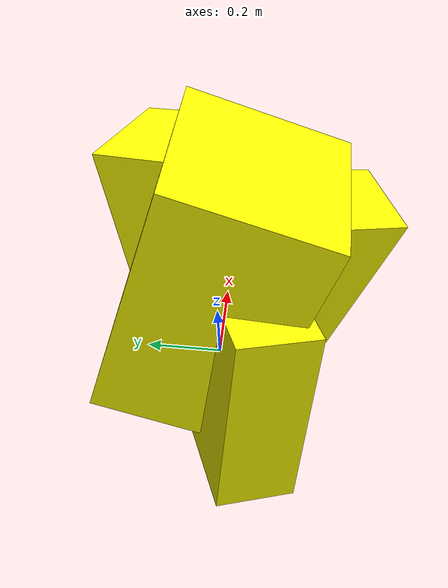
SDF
<?xml version="1.0"?>
<sdf version="1.6">
  <model name="polygon_crystal">
    <static>true</static>  <!-- 광물이므로 고정 객체 설정 -->
    <link name="crystal_link">

      <!-- 중앙 메인 수정 -->
      <visual name="main_crystal">
        <geometry>
          <box>
            <size>0.4 0.4 0.7</size>
          </box>
        </geometry>
        <pose>0 0 0.35 0.3 0.2 0</pose>  <!-- 약간 회전 추가 -->
        <material>
          <ambient>1 1 0 1</ambient>  <!-- 노란색 -->
          <diffuse>1 1 0 1</diffuse>
          <specular>0.2 0.2 0.2 1</specular>  <!-- 광택 감소 -->
          <emissive>0.1 0.1 0 1</emissive>
        </material>
      </visual>

      <!-- 작은 결정체 1 -->
      <visual name="small_crystal1">
        <geometry>
          <box>
            <size>0.3 0.2 0.5</size>
          </box>
        </geometry>
        <pose>-0.2 -0.1 0.2 0.2 0.3 0.4</pose>  <!-- 회전 추가 -->
        <material>
          <ambient>1 1 0 1</ambient>
          <diffuse>1 1 0 1</diffuse>
          <specular>0.2 0.2 0.2 1</specular>
          <emissive>0.1 0.1 0 1</emissive>
        </material>
      </visual>

      <!-- 작은 결정체 2 -->
      <visual name="small_crystal2">
        <geometry>
          <box>
            <size>0.25 0.25 0.6</size>
          </box>
        </geometry>
        <pose>0.2 0.1 0.25 -0.3 0.2 -0.4</pose>  <!-- 회전 조정 -->
        <material>
          <ambient>1 1 0 1</ambient>
          <diffuse>1 1 0 1</diffuse>
          <specular>0.2 0.2 0.2 1</specular>
          <emissive>0.1 0.1 0 1</emissive>
        </material>
      </visual>

      <!-- 작은 결정체 3 -->
      <visual name="small_crystal3">
        <geometry>
          <box>
            <size>0.2 0.3 0.45</size>
          </box>
        </geometry>
        <pose>0.1 -0.2 0.3 0.4 0 0.5</pose>  <!-- 회전 조정 -->
        <material>
          <ambient>1 1 0 1</ambient>
          <diffuse>1 1 0 1</diffuse>
          <specular>0.2 0.2 0.2 1</specular>
          <emissive>0.1 0.1 0 1</emissive>
        </material>
      </visual>

      <!-- 충돌 영역 설정 -->
      <collision name="crystal_collision">
        <geometry>
          <box>
            <size>0.6 0.6 0.8</size>  <!-- 전체 덩어리 크기 -->
          </box>
        </geometry>
      </collision>

    </link>
  </model>
</sdf>
